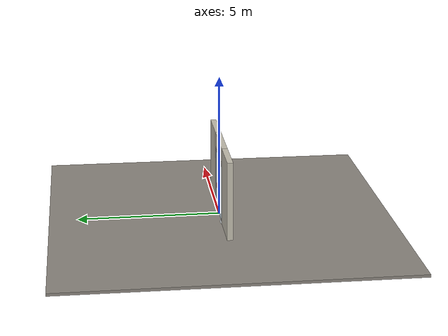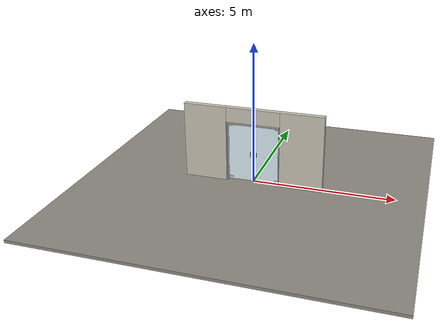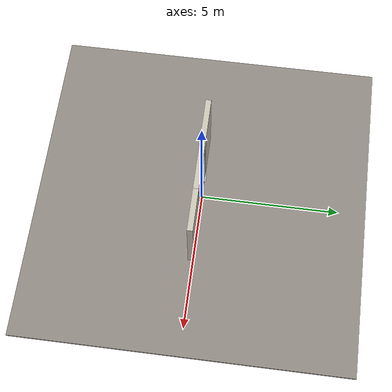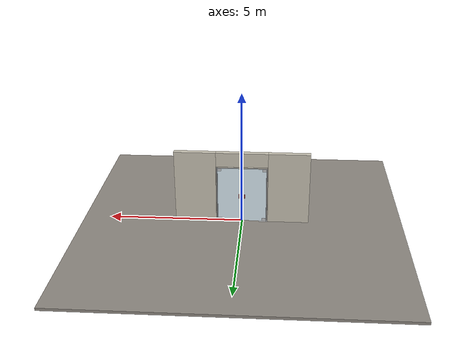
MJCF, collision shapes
<?xml version="1.0" ?>
<mujoco model="db0049_swing_double_simple">
  <compiler angle="radian" meshdir="../../hardware" texturedir="../../textures" autolimits="true" inertiafromgeom="false"/>
  <option timestep="0.002" integrator="implicitfast" cone="elliptic" impratio="10" noslip_iterations="3">
    <flag multiccd="enable"/>
  </option>
  <size memory="16M"/>
  <default>
    <geom condim="4" solref="0.005 1" solimp="0.95 0.99 0.001"/>
    <joint solreflimit="0.005 1" solimplimit="0.95 0.99 0.001"/>
    <tendon solreflimit="0.005 1"/>
    <equality solref="0.002 1"/>
  </default>
  <visual>
    <headlight ambient="0.4 0.4 0.4" diffuse="0.7 0.7 0.7" specular="0.2 0.2 0.2"/>
    <quality shadowsize="4096"/>
    <map znear="0.01" zfar="60"/>
  </visual>
  <asset>
    <mesh name="pull_1e5d69a91a" file="pull_1e5d69a91a.obj"/>
    <material name="mat_floor" rgba="0.55 0.53 0.5 1" specular="0.2" shininess="0.15" reflectance="0"/>
    <material name="mat_wall" rgba="0.78 0.76 0.7 1" specular="0.2" shininess="0.1" reflectance="0"/>
    <material name="mat_leaf_a" rgba="0.85 0.92 0.95 0.25" specular="0.2" shininess="0.95" reflectance="0.1"/>
    <material name="mat_glass_leaf" rgba="0.85 0.92 0.95 0.25" specular="0.2" shininess="0.95" reflectance="0.1"/>
    <material name="mat_patch" rgba="0.75 0.76 0.77 1" specular="0.8" shininess="0.65" reflectance="0.4"/>
    <material name="mat_hinge" rgba="0.65 0.66 0.68 1" specular="0.74" shininess="0.5" reflectance="0.36"/>
    <material name="mat_op_stainless" rgba="0.75 0.76 0.77 1" specular="0.8" shininess="0.65" reflectance="0.4"/>
    <material name="mat_closer" rgba="0.75 0.76 0.77 1" specular="0.8" shininess="0.65" reflectance="0.4"/>
    <material name="mat_leaf_b" rgba="0.85 0.92 0.95 0.25" specular="0.2" shininess="0.95" reflectance="0.1"/>
    <material name="mat_frame" rgba="0.8 0.81 0.83 1" specular="0.8" shininess="0.6" reflectance="0.4"/>
    <texture name="skybox" type="skybox" builtin="gradient" rgb1="0.6 0.7 0.85" rgb2="0.9 0.92 0.95" width="256" height="256"/>
  </asset>
  <worldbody>
    <light name="sun" pos="1.5 -2.5 4" dir="-0.3 0.5 -0.8" directional="true" diffuse="0.8 0.8 0.8" specular="0.3 0.3 0.3" castshadow="true"/>
    <light name="fill" pos="-1.5 2.5 3" dir="0.3 -0.5 -0.7" directional="true" diffuse="0.35 0.35 0.4" castshadow="false"/>
    <camera name="robot_view" pos="0 -2.711812 1.812087" xyaxes="1 0 0 0 0.26963 0.962964" fovy="52"/>
    <camera name="far_view" pos="0 2.563813 1.812087" xyaxes="-1 0 0 0 -0.26963 0.962964" fovy="52"/>
    <camera name="iso" pos="-2.004737 -2.289762 2.234138" xyaxes="0.741536 -0.670913 0 0.242917 0.268487 0.932151" fovy="46"/>
    <camera name="detail_handle" pos="0.0735 -0.866 1.32" xyaxes="0.97561 0.219512 0 -0.070934 0.315262 0.94635" fovy="38"/>
    <geom name="floor" type="box" size="6 6 0.05" pos="0 0 -0.05" material="mat_floor" group="0" contype="1" conaffinity="1" friction="0.8 0.005 0.0001" density="2400"/>
    <geom name="wall_left" type="box" size="0.76825 0.1 1.3735" pos="-1.73175 -0.074 1.3735" material="mat_wall" group="0" contype="1" conaffinity="1" friction="0.6 0.005 0.0001" density="800"/>
    <geom name="wall_right" type="box" size="0.76825 0.1 1.3735" pos="1.73175 -0.074 1.3735" material="mat_wall" group="0" contype="1" conaffinity="1" friction="0.6 0.005 0.0001" density="800"/>
    <geom name="wall_header" type="box" size="0.9635 0.1 0.2625" pos="0 -0.074 2.4845" material="mat_wall" group="0" contype="1" conaffinity="1" friction="0.6 0.005 0.0001" density="800"/>
    <geom name="floor_spring_cover" type="box" size="0.17 0.06 0.002" pos="-0.7985 0 0.002" material="mat_closer" group="1" contype="0" conaffinity="0" density="7900"/>
    <geom name="floor_spring_cover_2" type="box" size="0.17 0.06 0.002" pos="0.7985 0 0.002" material="mat_closer" group="1" contype="0" conaffinity="0" density="7900"/>
    <geom name="jamb_l" type="box" size="0.0095 0.1 1.0735" pos="-0.928 -0.074 1.0735" material="mat_frame" group="0" contype="1" conaffinity="1" friction="0.6 0.005 0.0001" density="300"/>
    <geom name="jamb_r" type="box" size="0.0095 0.1 1.0735" pos="0.928 -0.074 1.0735" material="mat_frame" group="0" contype="1" conaffinity="1" friction="0.6 0.005 0.0001" density="300"/>
    <geom name="jamb_head" type="box" size="0.9375 0.1 0.0095" pos="0 -0.074 2.1565" material="mat_frame" group="0" contype="1" conaffinity="1" friction="0.6 0.005 0.0001" density="300"/>
    <geom name="head_stud" type="box" size="0.9375 0.1 0.015" pos="0 -0.074 2.181" material="mat_wall" group="0" contype="1" conaffinity="1" friction="0.6 0.005 0.0001" density="500"/>
    <site name="approach_point" pos="0 -1.5 0" quat="1 0 0 0" size="0.05" rgba="0.2 0.9 0.2 0.5" group="4"/>
    <site name="goal_point" pos="0 1.5 0" quat="1 0 0 0" size="0.05" rgba="0.2 0.9 0.2 0.5" group="4"/>
    <site name="door_plane_center" pos="0 0 1.0735" quat="1 0 0 0" size="0.02" rgba="0.2 0.9 0.2 0.5" group="4"/>
    <site name="approach_point_2" pos="0 -1.5 0" quat="1 0 0 0" size="0.05" rgba="0.2 0.9 0.2 0.5" group="4"/>
    <site name="goal_point_2" pos="0 1.5 0" quat="1 0 0 0" size="0.05" rgba="0.2 0.9 0.2 0.5" group="4"/>
    <site name="door_plane_center_2" pos="0 0 1.0735" quat="1 0 0 0" size="0.02" rgba="0.2 0.9 0.2 0.5" group="4"/>
    <site name="approach_point_3" pos="0 -1.5 0" quat="1 0 0 0" size="0.05" rgba="0.2 0.9 0.2 0.5" group="4"/>
    <site name="goal_point_3" pos="0 1.5 0" quat="1 0 0 0" size="0.05" rgba="0.2 0.9 0.2 0.5" group="4"/>
    <site name="door_plane_center_3" pos="0 0 1.0735" quat="1 0 0 0" size="0.02" rgba="0.2 0.9 0.2 0.5" group="4"/>
    <body name="leaf_a" pos="-0.9185 0 0">
      <inertial pos="0.292064 0.006037 1.071467" mass="32.094997" quat="0.501145 0.493358 -0.506569 0.498839" diaginertia="3.640477776 10.576973417 14.185931408"/>
      <joint name="leaf_a_hinge" type="hinge" axis="0 0 1" pos="0.003 0.013 0" limited="true" range="0 1.570796" solreflimit="0.02 1" damping="8.268966" frictionloss="1.076033" stiffness="10.650649" springref="-2.180149" armature="0.02"/>
      <geom name="leaf_a_glass" type="box" size="0.457 0.006 1.067" pos="0.46 0 1.076" material="mat_glass_leaf" group="0" contype="1" conaffinity="1" friction="0.4 0.005 0.0001" density="1"/>
      <geom name="leaf_a_patch_bot" type="box" size="0.08 0.014 0.05" pos="0.083 0 0.069" material="mat_patch" group="1" contype="0" conaffinity="0" density="1"/>
      <geom name="leaf_a_patch_top" type="box" size="0.08 0.014 0.05" pos="0.083 0 2.083" material="mat_patch" group="1" contype="0" conaffinity="0" density="1"/>
      <geom name="hinge_continuous" type="cylinder" size="0.0136 1.057" pos="0.003 0.013 1.076" material="mat_hinge" group="1" contype="0" conaffinity="0" density="2700"/>
      <geom name="leaf_a_pull_n" type="mesh" mesh="pull_1e5d69a91a" pos="0.812 -0.006 1.04" quat="0.707107 0.707107 0 0" material="mat_op_stainless" group="1" contype="0" conaffinity="0" density="3000"/>
      <geom name="leaf_a_pull_col_n" type="capsule" size="0.0095 0.08" pos="0.812 -0.066 1.04" material="mat_op_stainless" group="3" contype="1" conaffinity="1" rgba="0.8 0.3 0.3 0.25" friction="0.7 0.01 0.0001" density="3000"/>
      <geom name="leaf_a_pull_p" type="mesh" mesh="pull_1e5d69a91a" pos="0.812 0.006 1.04" quat="-0.707107 0.707107 0 0" material="mat_op_stainless" group="1" contype="0" conaffinity="0" density="3000"/>
      <geom name="leaf_a_pull_col_p" type="capsule" size="0.0095 0.08" pos="0.812 0.066 1.04" material="mat_op_stainless" group="3" contype="1" conaffinity="1" rgba="0.8 0.3 0.3 0.25" friction="0.7 0.01 0.0001" density="3000"/>
      <site name="leaf_a_pull_grip_n" pos="0.812 -0.066 1.04" quat="1 0 0 0" size="0.012" rgba="0.2 0.9 0.2 0.5" group="4"/>
      <site name="leaf_a_pull_grip_p" pos="0.812 0.066 1.04" quat="1 0 0 0" size="0.012" rgba="0.2 0.9 0.2 0.5" group="4"/>
      <site name="leaf_a_edge_mid" pos="0.917 0 1.067" quat="1 0 0 0" size="0.02" rgba="0.2 0.9 0.2 0.5" group="4"/>
    </body>
    <body name="leaf_b" pos="0.9185 0 0">
      <inertial pos="-0.292064 0.006037 1.071467" mass="32.094997" quat="0.498839 0.506569 -0.493358 0.501145" diaginertia="3.640477776 10.576973417 14.185931408"/>
      <joint name="leaf_b_hinge" type="hinge" axis="0 0 -1" pos="-0.003 0.013 0" limited="true" range="0 1.570796" solreflimit="0.02 1" damping="8.268966" frictionloss="1.076033" stiffness="10.650649" springref="-2.180149" armature="0.02"/>
      <geom name="leaf_b_glass" type="box" size="0.457 0.006 1.067" pos="-0.46 0 1.076" material="mat_glass_leaf" group="0" contype="1" conaffinity="1" friction="0.4 0.005 0.0001" density="1"/>
      <geom name="leaf_b_patch_bot" type="box" size="0.08 0.014 0.05" pos="-0.083 0 0.069" material="mat_patch" group="1" contype="0" conaffinity="0" density="1"/>
      <geom name="leaf_b_patch_top" type="box" size="0.08 0.014 0.05" pos="-0.083 0 2.083" material="mat_patch" group="1" contype="0" conaffinity="0" density="1"/>
      <geom name="hinge_continuous_2" type="cylinder" size="0.0136 1.057" pos="-0.003 0.013 1.076" material="mat_hinge" group="1" contype="0" conaffinity="0" density="2700"/>
      <geom name="leaf_b_pull_n" type="mesh" mesh="pull_1e5d69a91a" pos="-0.812 -0.006 1.04" quat="0 0 -0.707107 0.707107" material="mat_op_stainless" group="1" contype="0" conaffinity="0" density="3000"/>
      <geom name="leaf_b_pull_col_n" type="capsule" size="0.0095 0.08" pos="-0.812 -0.066 1.04" material="mat_op_stainless" group="3" contype="1" conaffinity="1" rgba="0.8 0.3 0.3 0.25" friction="0.7 0.01 0.0001" density="3000"/>
      <geom name="leaf_b_pull_p" type="mesh" mesh="pull_1e5d69a91a" pos="-0.812 0.006 1.04" quat="0 0 0.707107 0.707107" material="mat_op_stainless" group="1" contype="0" conaffinity="0" density="3000"/>
      <geom name="leaf_b_pull_col_p" type="capsule" size="0.0095 0.08" pos="-0.812 0.066 1.04" material="mat_op_stainless" group="3" contype="1" conaffinity="1" rgba="0.8 0.3 0.3 0.25" friction="0.7 0.01 0.0001" density="3000"/>
      <site name="leaf_b_pull_grip_n" pos="-0.812 -0.066 1.04" quat="1 0 0 0" size="0.012" rgba="0.2 0.9 0.2 0.5" group="4"/>
      <site name="leaf_b_pull_grip_p" pos="-0.812 0.066 1.04" quat="1 0 0 0" size="0.012" rgba="0.2 0.9 0.2 0.5" group="4"/>
      <site name="leaf_b_edge_mid" pos="-0.917 0 1.067" quat="1 0 0 0" size="0.02" rgba="0.2 0.9 0.2 0.5" group="4"/>
    </body>
  </worldbody>
  <sensor>
    <jointpos name="leaf_a_hinge_pos" joint="leaf_a_hinge"/>
    <jointvel name="leaf_a_hinge_vel" joint="leaf_a_hinge"/>
    <jointpos name="leaf_b_hinge_pos" joint="leaf_b_hinge"/>
    <jointvel name="leaf_b_hinge_vel" joint="leaf_b_hinge"/>
  </sensor>
</mujoco>
